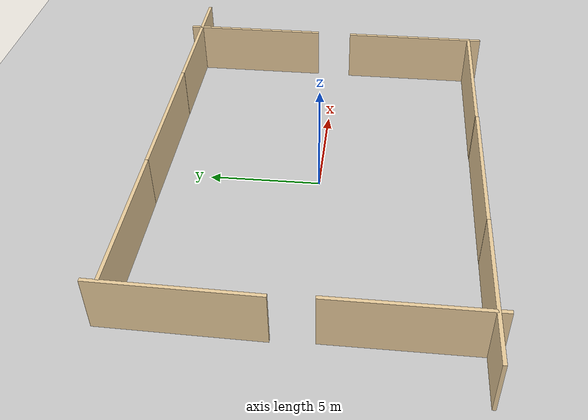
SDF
<sdf version="1.7">
 <world name="default">
  <light name="sun" type="directional">
   <pose>0 0 10 0 -0 0</pose>
   <diffuse>0.8 0.8 0.8 1</diffuse>
   <specular>0.2 0.2 0.2 1</specular>
   <attenuation>
    <range>1000</range>
    <constant>0.9</constant>
    <linear>0.01</linear>
    <quadratic>0.001</quadratic>
   </attenuation>
   <direction>-0.5 0.1 -0.9</direction>
   <spot><inner_angle>0</inner_angle><outer_angle>0</outer_angle><falloff>0</falloff></spot>
  </light>
  <model name="ground_plane">
   <static>1</static>
   <link name="link">
    <collision name="collision">
     <geometry><plane><normal>0 0 1</normal><size>100 100</size></plane></geometry>
     <surface><friction><ode><mu>100</mu><mu2>50</mu2></ode></friction></surface>
    </collision>
    <visual name="visual">
     <cast_shadows>0</cast_shadows>
     <geometry><plane><normal>0 0 1</normal><size>100 100</size></plane></geometry>
     <material>
      <script><uri>file://media/materials/scripts/gazebo.material</uri><name>Gazebo/Grey</name></script>
     </material>
    </visual>
   </link>
  </model>
  <gravity>0 0 -9.8</gravity>
  <magnetic_field>6e-06 2.3e-05 -4.2e-05</magnetic_field>
  <atmosphere type="adiabatic"/>
  <physics type="ode">
   <max_step_size>0.001</max_step_size>
   <real_time_factor>1</real_time_factor>
   <real_time_update_rate>1000</real_time_update_rate>
  </physics>
  <scene><ambient>0.4 0.4 0.4 1</ambient><background>0.7 0.7 0.7 1</background><shadows>1</shadows></scene>
  <audio><device>default</device></audio>
  <spherical_coordinates>
   <surface_model>EARTH_WGS84</surface_model>
   <latitude_deg>0</latitude_deg>
   <longitude_deg>0</longitude_deg>
   <elevation>0</elevation>
   <heading_deg>0</heading_deg>
  </spherical_coordinates>
  <model name="barrier_2">
   <pose>-3.34695 8.98813 0 0 -0 0</pose>
   <link name="Wall_8">
    <collision name="Wall_8_Collision">
     <geometry><box><size>6.75 0.15 2.5</size></box></geometry>
     <pose>0 0 1.25 0 -0 0</pose>
    </collision>
    <visual name="Wall_8_Visual">
     <pose>0 0 1.25 0 -0 0</pose>
     <geometry><box><size>6.75 0.15 2.5</size></box></geometry>
     <material>
      <script><uri>file://media/materials/scripts/gazebo.material</uri><name>Gazebo/Grey</name></script>
      <ambient>0.921569 0.807843 0.615686 1</ambient>
     </material>
     <meta><layer>0</layer></meta>
    </visual>
    <pose>-2.02894 -1.84716 0 0 -0 0</pose>
   </link>
   <static>1</static>
  </model>
  <model name="barrier_2_0">
   <pose>3.40663 8.99247 0 0 -0 0</pose>
   <link name="Wall_8">
    <collision name="Wall_8_Collision">
     <geometry><box><size>6.75 0.15 2.5</size></box></geometry>
     <pose>0 0 1.25 0 -0 0</pose>
    </collision>
    <visual name="Wall_8_Visual">
     <pose>0 0 1.25 0 -0 0</pose>
     <geometry><box><size>6.75 0.15 2.5</size></box></geometry>
     <material>
      <script><uri>file://media/materials/scripts/gazebo.material</uri><name>Gazebo/Grey</name></script>
      <ambient>0.921569 0.807843 0.615686 1</ambient>
     </material>
     <meta><layer>0</layer></meta>
    </visual>
    <pose>-2.02894 -1.84716 0 0 -0 0</pose>
   </link>
   <static>1</static>
  </model>
  <model name="barrier_2_1">
   <pose>10.147 8.98905 0 0 -0 0</pose>
   <link name="Wall_8">
    <collision name="Wall_8_Collision">
     <geometry><box><size>6.75 0.15 2.5</size></box></geometry>
     <pose>0 0 1.25 0 -0 0</pose>
    </collision>
    <visual name="Wall_8_Visual">
     <pose>0 0 1.25 0 -0 0</pose>
     <geometry><box><size>6.75 0.15 2.5</size></box></geometry>
     <material>
      <script><uri>file://media/materials/scripts/gazebo.material</uri><name>Gazebo/Grey</name></script>
      <ambient>0.921569 0.807843 0.615686 1</ambient>
     </material>
     <meta><layer>0</layer></meta>
    </visual>
    <pose>-2.02894 -1.84716 0 0 -0 0</pose>
   </link>
   <static>1</static>
  </model>
  <model name="barrier_2_2">
   <pose>11.1175 2.24325 0 0 0 -1.57496</pose>
   <link name="Wall_8">
    <collision name="Wall_8_Collision">
     <geometry><box><size>6.75 0.15 2.5</size></box></geometry>
     <pose>0 0 1.25 0 -0 0</pose>
    </collision>
    <visual name="Wall_8_Visual">
     <pose>0 0 1.25 0 -0 0</pose>
     <geometry><box><size>6.75 0.15 2.5</size></box></geometry>
     <material>
      <script><uri>file://media/materials/scripts/gazebo.material</uri><name>Gazebo/Grey</name></script>
      <ambient>0.921569 0.807843 0.615686 1</ambient>
     </material>
     <meta><layer>0</layer></meta>
    </visual>
    <pose>-2.02894 -1.84716 0 0 -0 0</pose>
   </link>
   <static>1</static>
  </model>
  <model name="barrier_2_3">
   <pose>7.84786 -5.05593 0 0 -0 0</pose>
   <link name="Wall_8">
    <collision name="Wall_8_Collision">
     <geometry><box><size>6.75 0.15 2.5</size></box></geometry>
     <pose>0 0 1.25 0 -0 0</pose>
    </collision>
    <visual name="Wall_8_Visual">
     <pose>0 0 1.25 0 -0 0</pose>
     <geometry><box><size>6.75 0.15 2.5</size></box></geometry>
     <material>
      <script><uri>file://media/materials/scripts/gazebo.material</uri><name>Gazebo/Grey</name></script>
      <ambient>0.921569 0.807843 0.615686 1</ambient>
     </material>
     <meta><layer>0</layer></meta>
    </visual>
    <pose>-2.02894 -1.84716 0 0 -0 0</pose>
   </link>
   <static>1</static>
  </model>
  <model name="barrier_2_4">
   <pose>1.09128 -5.07792 0 0 -0 0</pose>
   <link name="Wall_8">
    <collision name="Wall_8_Collision">
     <geometry><box><size>6.75 0.15 2.5</size></box></geometry>
     <pose>0 0 1.25 0 -0 0</pose>
    </collision>
    <visual name="Wall_8_Visual">
     <pose>0 0 1.25 0 -0 0</pose>
     <geometry><box><size>6.75 0.15 2.5</size></box></geometry>
     <material>
      <script><uri>file://media/materials/scripts/gazebo.material</uri><name>Gazebo/Grey</name></script>
      <ambient>0.921569 0.807843 0.615686 1</ambient>
     </material>
     <meta><layer>0</layer></meta>
    </visual>
    <pose>-2.02894 -1.84716 0 0 -0 0</pose>
   </link>
   <static>1</static>
  </model>
  <model name="barrier_2_5">
   <pose>-5.65749 -5.08565 0 0 -0 0</pose>
   <link name="Wall_8">
    <collision name="Wall_8_Collision">
     <geometry><box><size>6.75 0.15 2.5</size></box></geometry>
     <pose>0 0 1.25 0 -0 0</pose>
    </collision>
    <visual name="Wall_8_Visual">
     <pose>0 0 1.25 0 -0 0</pose>
     <geometry><box><size>6.75 0.15 2.5</size></box></geometry>
     <material>
      <script><uri>file://media/materials/scripts/gazebo.material</uri><name>Gazebo/Grey</name></script>
      <ambient>0.921569 0.807843 0.615686 1</ambient>
     </material>
     <meta><layer>0</layer></meta>
    </visual>
    <pose>-2.02894 -1.84716 0 0 -0 0</pose>
   </link>
   <static>1</static>
  </model>
  <model name="barrier_2_6">
   <pose>-10.6644 -2.00288 0 0 -0 1.56654</pose>
   <link name="Wall_8">
    <collision name="Wall_8_Collision">
     <geometry><box><size>6.75 0.15 2.5</size></box></geometry>
     <pose>0 0 1.25 0 -0 0</pose>
    </collision>
    <visual name="Wall_8_Visual">
     <pose>0 0 1.25 0 -0 0</pose>
     <geometry><box><size>6.75 0.15 2.5</size></box></geometry>
     <material>
      <script><uri>file://media/materials/scripts/gazebo.material</uri><name>Gazebo/Grey</name></script>
      <ambient>0.921569 0.807843 0.615686 1</ambient>
     </material>
     <meta><layer>0</layer></meta>
    </visual>
    <pose>-2.02894 -1.84716 0 0 -0 0</pose>
   </link>
   <static>1</static>
  </model>
  <model name="barrier_2_7">
   <pose>-10.6574 6.47176 0 0 -0 1.55377</pose>
   <link name="Wall_8">
    <collision name="Wall_8_Collision">
     <geometry><box><size>6.75 0.15 2.5</size></box></geometry>
     <pose>0 0 1.25 0 -0 0</pose>
    </collision>
    <visual name="Wall_8_Visual">
     <pose>0 0 1.25 0 -0 0</pose>
     <geometry><box><size>6.75 0.15 2.5</size></box></geometry>
     <material>
      <script><uri>file://media/materials/scripts/gazebo.material</uri><name>Gazebo/Grey</name></script>
      <ambient>0.921569 0.807843 0.615686 1</ambient>
     </material>
     <meta><layer>0</layer></meta>
    </visual>
    <pose>-2.02894 -1.84716 0 0 -0 0</pose>
   </link>
   <static>1</static>
  </model>
  <model name="barrier_2_8">
   <pose>11.0639 -6.16438 0 0 0 -1.57299</pose>
   <link name="Wall_8">
    <collision name="Wall_8_Collision">
     <geometry><box><size>6.75 0.15 2.5</size></box></geometry>
     <pose>0 0 1.25 0 -0 0</pose>
    </collision>
    <visual name="Wall_8_Visual">
     <pose>0 0 1.25 0 -0 0</pose>
     <geometry><box><size>6.75 0.15 2.5</size></box></geometry>
     <material>
      <script><uri>file://media/materials/scripts/gazebo.material</uri><name>Gazebo/Grey</name></script>
      <ambient>0.921569 0.807843 0.615686 1</ambient>
     </material>
     <meta><layer>0</layer></meta>
    </visual>
    <pose>-2.02894 -1.84716 0 0 -0 0</pose>
   </link>
   <static>1</static>
  </model>
 </world>
</sdf>
